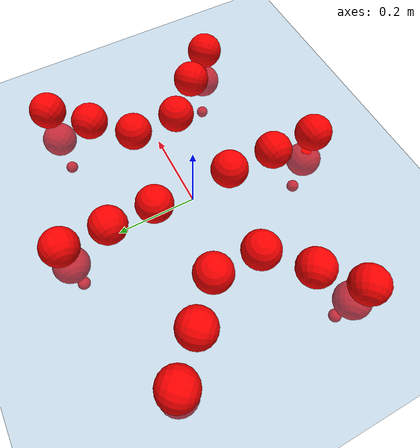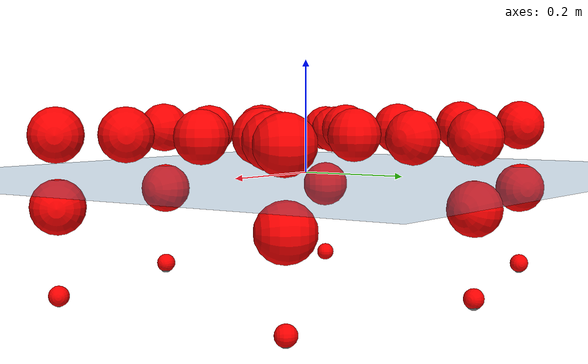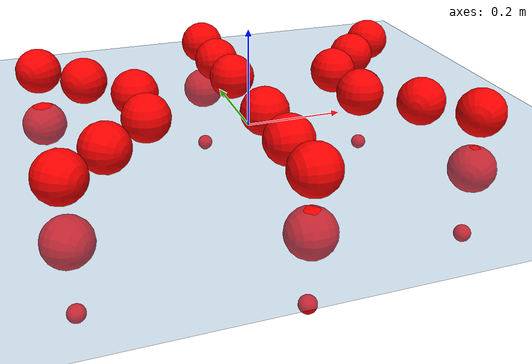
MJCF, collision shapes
<mujoco model="Golem">
  <compiler angle="radian" assetdir="assets" balanceinertia="true" inertiafromgeom="false"/>

  <option timestep="0.005" density="1.2" viscosity="2e-05"/>

  <size nkey="1"/>

  <visual>
    <quality shadowsize="8192"/>
    <map shadowclip="0.5"/>
  </visual>

  <default>
    <default class="/">
      <joint armature="0.01" damping="0.01" frictionloss="0.01"/>
      <geom contype="0" conaffinity="0" group="1" solref="-1000 -80"/>
      <site size="0.01 0.005 0.005" group="5"/>
      <general forcelimited="true" biastype="affine" gainprm="25" biasprm="0 -25 -0.5"/>
      <default class="visual">
        <geom type="mesh" group="2"/>
      </default>
      <default class="collision">
        <geom group="3"/>
      </default>
      <default class="foot">
        <geom size="0.01 0 0" condim="6" group="4" priority="1" solimp="0.015 1 0.01"/>
      </default>
      <default class="reward_collision_sphere">
        <geom group="5" rgba="1 0 0 1"/>
      </default>
    </default>
  </default>

  <asset>
    <texture type="skybox" colorspace="auto" name="//unnamed_texture_0" builtin="gradient" rgb1="0.95 0.95 0.95" rgb2="0.95 0.95 0.95" width="100" height="600"/>
    <texture type="2d" colorspace="auto" name="texplane" builtin="checker" rgb1="0.345 0.575 0.748" rgb2="0.345 0.575 0.748" markrgb="1 1 1" width="512" height="512"/>
    <material name="MatPlane" class="/" texture="texplane" texuniform="true" texrepeat="2 2" specular="0.9"/>
    <mesh name="body" class="/" file="body.stl" scale="0.001 0.001 0.001"/>
    <mesh name="coxa" class="/" file="coxa.stl" scale="0.001 0.001 0.001"/>
    <mesh name="femur" class="/" file="femur.stl" scale="0.001 0.001 0.001"/>
    <mesh name="tibia" class="/" file="tibia.stl" scale="0.001 0.001 0.001"/>
    <mesh name="tarsus" class="/" file="tarsus.stl" scale="0.001 0.001 0.001"/>
  </asset>

  <worldbody>
    <geom name="floor" class="/" size="100 100 0.125" type="plane" group="0" material="MatPlane"/>
    <light name="toplight_shadow" class="/" pos="0 0 5" dir="0.0990148 0.0990148 -0.990148" type="directional" ambient="0.04 0.04 0.04" diffuse="0.55 0.55 0.55" specular="0.12 0.12 0.12"/>
    <light name="toplight_fill" class="/" pos="0 0 5" dir="0.0990148 0.0990148 -0.990148" type="directional" castshadow="false" ambient="0.04 0.04 0.04" diffuse="0.3 0.3 0.3" specular="0.08 0.08 0.08"/>
    <body name="trunk" pos="-0.00201801 0.00166351 0.00200372" quat="1 -4.78428e-06 -5.88054e-06 3.3023e-06">
      <inertial pos="0.0029152 0.00168069 -0.00404785" quat="0.999995 -0.00219997 -0.00167712 -0.00138275" mass="6.17091" diaginertia="0.0489742 0.0158679 0.0129028"/>
      <joint name="//unnamed_joint_0" type="free"/>
      <geom name="//unnamed_geom_1" class="/" pos="0 0 0.0671873" quat="1 0 0 0" type="mesh" rgba="0.9 0.9 0.9 1" mesh="body"/>
      <site name="imu" class="/" pos="0.172331 -0.00460341 0.118304" size="0.0117043"/>
      <camera name="track" class="/" pos="0 -2.17278 0" quat="0.707107 0.707107 0 0" mode="trackcom"/>
      <camera name="ego_camera" class="/" pos="0.178763 0 0.10498" quat="-0.5 -0.5 0.5 0.5"/>
      <body name="coxa_RR" pos="-0.244062 -0.089174 0.0698148" quat="0.382684 -7.44396e-05 0.000117179 -0.923879">
        <inertial pos="0.000723973 0.00261391 -0.00245521" quat="0.999992 0.00348601 0.0012132 -0.00143512" mass="0.339788" diaginertia="0.0498871 0.0153858 0.0130315"/>
        <joint name="coxa_joint_RR" class="/" pos="0 0 0" axis="-0.00977272 0.00163301 -0.999951" stiffness="0.0127212" range="-3.13915 3.13097" armature="0.0119426" damping="0" frictionloss="0.0117649"/>
        <geom name="//unnamed_geom_2" class="/" type="mesh" rgba="0.2 0.2 0.2 1" mesh="coxa"/>
        <geom name="//unnamed_geom_3" class="reward_collision_sphere" size="0.0468172" pos="-0.041253 0 0"/>
        <body name="femur_RR" pos="0.0829657 -0.00166977 -0.00564095" quat="0.500202 -0.500068 0.500319 0.499411">
          <inertial pos="-0.00232028 -0.0026623 0.000752082" quat="0.99991 0.0108783 0.00609632 0.00490347" mass="0.317194" diaginertia="0.0486197 0.0154698 0.0120891"/>
          <joint name="femur_joint_RR" class="/" pos="0 0 0" axis="-0.0137028 -0.003352 -0.9999" stiffness="0.00864364" range="-3.12298 3.12048" armature="0.0102104" damping="0" frictionloss="0.01149"/>
          <geom name="//unnamed_geom_4" class="/" type="mesh" rgba="0.9 0.9 0.9 1" mesh="femur"/>
          <geom name="//unnamed_geom_5" class="reward_collision_sphere" size="0.0468172"/>
          <body name="tibia_RR" pos="0.000652062 -0.115624 -0.0026726" quat="-0.000838345 0.999999 -0.000493331 -0.000766932">
            <inertial pos="0.000836093 -0.00224182 0.000643085" quat="0.999994 -0.00254971 -0.000952463 0.00224359" mass="0.31486" diaginertia="0.0476529 0.0143443 0.0122709"/>
            <joint name="tibia_joint_RR" class="/" pos="0 0 0" axis="-0.000986679 -0.00375006 0.999992" stiffness="0.000998884" range="-3.09041 3.16896" armature="0.0105998" damping="0.00192532" frictionloss="0.0116062"/>
            <geom name="//unnamed_geom_6" class="/" type="mesh" rgba="0.2 0.2 0.2 1" mesh="tibia"/>
            <geom name="//unnamed_geom_7" class="reward_collision_sphere" size="0.0468172"/>
            <body name="tarsus_RR" pos="0.12121 0.0010053 -0.000789278" quat="1 9.77741e-05 -4.63713e-05 0.000244118">
              <inertial pos="0.0821238 0.000775502 0.00245025" quat="0.494775 0.510052 0.494277 0.500735" mass="0.316989" diaginertia="0.0501869 0.0154069 0.0125072"/>
              <joint name="tarsus_joint_RR" class="/" pos="0 0 0" axis="-5.53709e-06 -0.00191744 0.999998" stiffness="0.00361702" range="-3.12388 3.16484" armature="0.0101856" damping="0.0416685" frictionloss="0.0103625"/>
              <geom name="//unnamed_geom_8" class="/" type="mesh" rgba="0.9 0.9 0.9 1" mesh="tarsus"/>
              <geom name="foot_1" class="foot" size="0.0114309" pos="0.154011 0 0" quat="0 -0.707107 0 0.707107"/>
              <geom name="//unnamed_geom_10" class="reward_collision_sphere" size="0.0468172"/>
              <geom name="//unnamed_geom_11" class="reward_collision_sphere" size="0.0175565" pos="0.147823 0 0"/>
              <site name="foot_1" class="foot" pos="0.154011 0 0" quat="0 -0.707107 0 0.707107" size="0.0117043"/>
            </body>
          </body>
        </body>
      </body>
      <body name="coxa_RM" pos="0.000591548 -0.142978 0.0710876" quat="0.706623 0.00010075 0.000361404 -0.70759">
        <inertial pos="0.000669881 0.00029354 -0.00230846" quat="0.999928 0.00157716 -0.0108589 -0.00491863" mass="0.30974" diaginertia="0.0477466 0.015526 0.012884"/>
        <joint name="coxa_joint_RM" class="/" pos="0 0 0" axis="0.00466265 -0.00971309 -0.999942" range="-3.19265 3.17725" armature="0.0122814" damping="0.0117215" frictionloss="0.0137717"/>
        <geom name="//unnamed_geom_12" class="/" type="mesh" rgba="0.2 0.2 0.2 1" mesh="coxa"/>
        <geom name="//unnamed_geom_13" class="reward_collision_sphere" size="0.0468172" pos="-0.041253 0 0"/>
        <body name="femur_RM" pos="0.0839327 -0.000483307 -0.00147294" quat="0.500654 -0.499865 0.499558 0.499922">
          <inertial pos="0.0024066 -0.00266788 0.000194633" quat="0.99991 0.00584612 0.00420882 -0.011306" mass="0.311534" diaginertia="0.0474792 0.0146614 0.0121986"/>
          <joint name="femur_joint_RM" class="/" pos="0 0 0" axis="-0.0081311 -0.000550032 -0.999967" range="-3.12757 3.13881" armature="0.0103159" damping="0.015211" frictionloss="0.0115685"/>
          <geom name="//unnamed_geom_14" class="/" type="mesh" rgba="0.9 0.9 0.9 1" mesh="femur"/>
          <geom name="//unnamed_geom_15" class="reward_collision_sphere" size="0.0468172"/>
          <body name="tibia_RM" pos="-0.0023843 -0.117952 -0.00248524" quat="-0.000215791 1 -5.88696e-05 -3.39374e-05">
            <inertial pos="0.0010585 0.0024723 -0.000734792" quat="0.999986 -3.84718e-06 0.00264024 0.00465179" mass="0.313231" diaginertia="0.048072 0.014128 0.0120512"/>
            <joint name="tibia_joint_RM" class="/" pos="0 0 0" axis="-0.00135043 -0.00236799 0.999996" range="-3.11784 3.06961" armature="0.0116453" damping="0.0175898" frictionloss="0.0131239"/>
            <geom name="//unnamed_geom_16" class="/" type="mesh" rgba="0.2 0.2 0.2 1" mesh="tibia"/>
            <geom name="//unnamed_geom_17" class="reward_collision_sphere" size="0.0468172"/>
            <body name="tarsus_RM" pos="0.119036 -0.00108013 0.00137543" quat="1 -5.9094e-06 5.53837e-05 -0.000103301">
              <inertial pos="0.0855323 -0.000973883 0.000483717" quat="0.493855 0.494733 0.50717 0.504109" mass="0.310031" diaginertia="0.0494421 0.0147443 0.0126619"/>
              <joint name="tarsus_joint_RM" class="/" pos="0 0 0" axis="-0.000204064 7.76325e-05 1" range="-3.11207 3.08566" armature="0.0131607" damping="0" frictionloss="0.0122257"/>
              <geom name="//unnamed_geom_18" class="/" type="mesh" rgba="0.9 0.9 0.9 1" mesh="tarsus"/>
              <geom name="foot_2" class="foot" size="0.012841" pos="0.154011 0 0" quat="0 -0.707107 0 0.707107"/>
              <geom name="//unnamed_geom_20" class="reward_collision_sphere" size="0.0468172"/>
              <geom name="//unnamed_geom_21" class="reward_collision_sphere" size="0.0175565" pos="0.147823 0 0"/>
              <site name="foot_2" class="foot" pos="0.154011 0 0" quat="0 -0.707107 0 0.707107" size="0.0117043"/>
            </body>
          </body>
        </body>
      </body>
      <body name="coxa_RF" pos="0.245156 -0.0925727 0.0660614" quat="0.923647 0.000121636 -0.000116187 -0.383244">
        <inertial pos="-0.00247501 0.00197501 -0.000428153" quat="0.999997 0.000565079 0.00103548 0.00196207" mass="0.327515" diaginertia="0.0493372 0.0159675 0.0126038"/>
        <joint name="coxa_joint_RF" class="/" pos="0 0 0" axis="-0.000142351 0.00486763 -0.999988" range="-3.15058 3.18897" armature="0.011418" damping="0.0302742" frictionloss="0.0118203"/>
        <geom name="//unnamed_geom_22" class="/" type="mesh" rgba="0.2 0.2 0.2 1" mesh="coxa"/>
        <geom name="//unnamed_geom_23" class="reward_collision_sphere" size="0.0468172" pos="-0.041253 0 0"/>
        <body name="femur_RF" pos="0.0824647 -0.00144011 0.00444712" quat="0.501211 -0.499929 0.499461 0.499397">
          <inertial pos="0.00259856 -0.00132803 -0.000332215" quat="0.999921 -0.00377746 0.00417107 -0.0112146" mass="0.313129" diaginertia="0.0491256 0.0144118 0.0121521"/>
          <joint name="femur_joint_RF" class="/" pos="0 0 0" axis="-0.00162321 -0.000607926 -0.999998" range="-3.09374 3.19234" armature="0.012092" damping="0.0152895" frictionloss="0.0118188"/>
          <geom name="//unnamed_geom_24" class="/" type="mesh" rgba="0.9 0.9 0.9 1" mesh="femur"/>
          <geom name="//unnamed_geom_25" class="reward_collision_sphere" size="0.0468172"/>
          <body name="tibia_RF" pos="0.000106367 -0.114003 -0.0033294" quat="0.000159564 1 -7.04392e-05 -0.000196219">
            <inertial pos="0.00281055 0.000173665 -0.00241031" quat="1 0.000109981 -2.07773e-05 -8.59972e-05" mass="0.323845" diaginertia="0.0495417 0.0158499 0.0131308"/>
            <joint name="tibia_joint_RF" class="/" pos="0 0 0" axis="0.0105326 0.00598271 0.999927" stiffness="0.00611446" range="-3.19098 3.18685" armature="0.0102818" damping="0.0120234" frictionloss="0.0118363"/>
            <geom name="//unnamed_geom_26" class="/" type="mesh" rgba="0.2 0.2 0.2 1" mesh="tibia"/>
            <geom name="//unnamed_geom_27" class="reward_collision_sphere" size="0.0468172"/>
            <body name="tarsus_RF" pos="0.118826 -0.00200555 -0.000144889" quat="1 0.000726586 0.000502686 4.03492e-05">
              <inertial pos="0.0838849 0.00230186 -0.000628191" quat="0.501474 0.499705 0.498573 0.500244" mass="0.3193" diaginertia="0.0506491 0.0147816 0.0130883"/>
              <joint name="tarsus_joint_RF" class="/" pos="0 0 0" axis="0.0075859 0.00238015 0.999968" range="-3.19261 3.08902" armature="0.0125779" damping="0.00602087" frictionloss="0.0104384"/>
              <geom name="//unnamed_geom_28" class="/" type="mesh" rgba="0.9 0.9 0.9 1" mesh="tarsus"/>
              <geom name="foot_3" class="foot" size="0.0117923" pos="0.154011 0 0" quat="0 -0.707107 0 0.707107"/>
              <geom name="//unnamed_geom_30" class="reward_collision_sphere" size="0.0468172"/>
              <geom name="//unnamed_geom_31" class="reward_collision_sphere" size="0.0175565" pos="0.147823 0 0"/>
              <site name="foot_3" class="foot" pos="0.154011 0 0" quat="0 -0.707107 0 0.707107" size="0.0117043"/>
            </body>
          </body>
        </body>
      </body>
      <body name="coxa_LR" pos="-0.242288 0.0889075 0.0723612" quat="0.382519 0.000127397 0.00010204 0.923948">
        <inertial pos="0.00164033 0.00199429 0.00330141" quat="0.999927 0.0104727 -0.00351167 -0.00496673" mass="0.319238" diaginertia="0.0491691 0.014614 0.0132895"/>
        <joint name="coxa_joint_LR" class="/" pos="0 0 0" axis="-0.00133676 0.0081785 -0.999966" stiffness="0.00540922" range="-3.19137 3.09817" armature="0.0106988" damping="0" frictionloss="0.0117286"/>
        <geom name="//unnamed_geom_32" class="/" type="mesh" rgba="0.2 0.2 0.2 1" mesh="coxa"/>
        <geom name="//unnamed_geom_33" class="reward_collision_sphere" size="0.0468172" pos="-0.041253 0 0"/>
        <body name="femur_LR" pos="0.0823111 0.000583074 0.0040398" quat="0.500158 -0.499911 0.500041 0.49989">
          <inertial pos="-0.00250434 0.000537219 -0.000721356" quat="0.999954 0.00160479 -0.00323644 -0.00883541" mass="0.320889" diaginertia="0.0481297 0.0149549 0.0125592"/>
          <joint name="femur_joint_LR" class="/" pos="0 0 0" axis="0.00634503 0.00455059 0.99997" stiffness="0.00629257" range="-3.0859 3.13521" armature="0.012977" damping="0.00125378" frictionloss="0.0133606"/>
          <geom name="//unnamed_geom_34" class="/" type="mesh" rgba="0.9 0.9 0.9 1" mesh="femur"/>
          <geom name="//unnamed_geom_35" class="reward_collision_sphere" size="0.0468172"/>
          <body name="tibia_LR" pos="-0.000569769 -0.119248 -0.00102492" quat="0.000476732 1 -0.000470456 9.36915e-05">
            <inertial pos="-0.000113055 2.42872e-05 -0.000262186" quat="0.999959 0.00806694 -0.00110096 -0.00405577" mass="0.340603" diaginertia="0.0504377 0.015035 0.0129111"/>
            <joint name="tibia_joint_LR" class="/" pos="0 0 0" axis="0.00815292 -0.0026878 -0.999963" stiffness="0.0076559" range="-3.18156 3.1386" armature="0.0114577" damping="0" frictionloss="0.011913"/>
            <geom name="//unnamed_geom_36" class="/" type="mesh" rgba="0.2 0.2 0.2 1" mesh="tibia"/>
            <geom name="//unnamed_geom_37" class="reward_collision_sphere" size="0.0468172"/>
            <body name="tarsus_LR" pos="0.121766 0.00150254 0.000233028" quat="1 0.000373375 0.000600235 0.000552814">
              <inertial pos="0.0797876 0.000305404 0.00263844" quat="0.502032 0.50132 0.498744 0.497891" mass="0.32593" diaginertia="0.0504163 0.0155179 0.013121"/>
              <joint name="tarsus_joint_LR" class="/" pos="0 0 0" axis="-0.00569869 0.00200236 -0.999982" range="-3.13051 3.14838" armature="0.0121493" damping="0.000922776" frictionloss="0.0132749"/>
              <geom name="//unnamed_geom_38" class="/" type="mesh" rgba="0.9 0.9 0.9 1" mesh="tarsus"/>
              <geom name="foot_4" class="foot" size="0.0124936" pos="0.154011 0 0" quat="0.707107 0 -0.707107 0"/>
              <geom name="//unnamed_geom_40" class="reward_collision_sphere" size="0.0468172"/>
              <geom name="//unnamed_geom_41" class="reward_collision_sphere" size="0.0175565" pos="0.147823 0 0"/>
              <site name="foot_4" class="foot" pos="0.154011 0 0" quat="0.707107 0 -0.707107 0" size="0.0117043"/>
            </body>
          </body>
        </body>
      </body>
      <body name="coxa_LM" pos="-8.59068e-05 0.141646 0.0666307" quat="0.706738 -0.000223487 -0.00126109 0.707474">
        <inertial pos="0.00301705 -0.00274504 0.000127473" quat="0.999979 0.00394176 -0.00064066 -0.00508028" mass="0.309173" diaginertia="0.046354 0.0148674 0.0122572"/>
        <joint name="coxa_joint_LM" class="/" pos="0 0 0" axis="0.00820422 0.00302037 -0.999962" range="-3.14712 3.14143" armature="0.0131036" damping="0.0164247" frictionloss="0.0117128"/>
        <geom name="//unnamed_geom_42" class="/" type="mesh" rgba="0.2 0.2 0.2 1" mesh="coxa"/>
        <geom name="//unnamed_geom_43" class="reward_collision_sphere" size="0.0468172" pos="-0.041253 0 0"/>
        <body name="femur_LM" pos="0.0763764 -0.000361813 -0.00243767" quat="0.499958 -0.500226 0.499811 0.500005">
          <inertial pos="0.00234613 0.000391067 -0.00300175" quat="0.999952 -0.00577558 -0.00102543 -0.00780026" mass="0.330346" diaginertia="0.052093 0.0163008 0.0136023"/>
          <joint name="femur_joint_LM" class="/" pos="0 0 0" axis="0.00483276 -0.00545933 0.999973" stiffness="0.00927298" range="-3.13237 3.14084" armature="0.012657" damping="0.010555" frictionloss="0.011452"/>
          <geom name="//unnamed_geom_44" class="/" type="mesh" rgba="0.9 0.9 0.9 1" mesh="femur"/>
          <geom name="//unnamed_geom_45" class="reward_collision_sphere" size="0.0468172"/>
          <body name="tibia_LM" pos="-0.00267973 -0.116985 0.000944137" quat="0.000526414 0.999999 0.001148 0.000796535">
            <inertial pos="0.00189223 0.00264846 0.00260931" quat="0.999982 0.000332386 -0.000622616 0.00591293" mass="0.31038" diaginertia="0.0508848 0.0149376 0.0131967"/>
            <joint name="tibia_joint_LM" class="/" pos="0 0 0" axis="0.0066718 0.00103667 -0.999977" range="-3.15624 3.19083" armature="0.011039" damping="0.025423" frictionloss="0.0105194"/>
            <geom name="//unnamed_geom_46" class="/" type="mesh" rgba="0.2 0.2 0.2 1" mesh="tibia"/>
            <geom name="//unnamed_geom_47" class="reward_collision_sphere" size="0.0468172"/>
            <body name="tarsus_LM" pos="0.116336 0.000197446 0.00129416" quat="0.999998 0.00132567 -0.000997635 0.000535596">
              <inertial pos="0.081444 0.000923204 -0.00195367" quat="0.499626 0.499897 0.499651 0.500824" mass="0.336657" diaginertia="0.0492991 0.0152279 0.0133021"/>
              <joint name="tarsus_joint_LM" class="/" pos="0 0 0" axis="1.11922e-05 2.05687e-05 -1" stiffness="0.0163611" range="-3.19826 3.18652" armature="0.0110498" damping="0.0249153" frictionloss="0.01322"/>
              <geom name="//unnamed_geom_48" class="/" type="mesh" rgba="0.9 0.9 0.9 1" mesh="tarsus"/>
              <geom name="foot_5" class="foot" size="0.0129982" pos="0.154011 0 0" quat="0.707107 0 -0.707107 0"/>
              <geom name="//unnamed_geom_50" class="reward_collision_sphere" size="0.0468172"/>
              <geom name="//unnamed_geom_51" class="reward_collision_sphere" size="0.0175565" pos="0.147823 0 0"/>
              <site name="foot_5" class="foot" pos="0.154011 0 0" quat="0.707107 0 -0.707107 0" size="0.0117043"/>
            </body>
          </body>
        </body>
      </body>
      <body name="coxa_LF" pos="0.241928 0.0885905 0.0694195" quat="0.923828 -4.71609e-05 -0.000239053 0.382807">
        <inertial pos="0.000178226 0.000503685 -0.00255261" quat="0.999989 -0.000678448 -0.000984736 0.00449785" mass="0.322447" diaginertia="0.0505823 0.0153905 0.0128615"/>
        <joint name="coxa_joint_LF" class="/" pos="0 0 0" axis="0.00358064 -0.00127429 -0.999993" stiffness="0.0300997" range="-3.18954 3.08097" armature="0.011114" damping="0.0269589" frictionloss="0.011065"/>
        <geom name="//unnamed_geom_52" class="/" type="mesh" rgba="0.2 0.2 0.2 1" mesh="coxa"/>
        <geom name="//unnamed_geom_53" class="reward_collision_sphere" size="0.0468172" pos="-0.041253 0 0"/>
        <body name="femur_LF" pos="0.0805777 0.0018484 -0.00215661" quat="0.499647 -0.500158 0.499565 0.500629">
          <inertial pos="-0.00266648 0.000330111 0.000145955" quat="0.999916 -0.00512202 -0.0117823 0.00166605" mass="0.302163" diaginertia="0.0477925 0.0148016 0.0121231"/>
          <joint name="femur_joint_LF" class="/" pos="0 0 0" axis="-0.00149132 0.00149233 0.999998" stiffness="0.00231756" range="-3.11099 3.18274" armature="0.0112138" damping="0" frictionloss="0.0102216"/>
          <geom name="//unnamed_geom_54" class="/" type="mesh" rgba="0.9 0.9 0.9 1" mesh="femur"/>
          <geom name="//unnamed_geom_55" class="reward_collision_sphere" size="0.0468172"/>
          <body name="tibia_LF" pos="0.000740773 -0.119468 0.00116708" quat="-4.5172e-05 1 0.000313327 -9.04421e-05">
            <inertial pos="1.6858e-05 0.000538435 0.00248531" quat="0.999913 -0.00330196 -0.00359883 0.0122645" mass="0.309472" diaginertia="0.0472602 0.0151329 0.0127029"/>
            <joint name="tibia_joint_LF" class="/" pos="0 0 0" axis="0.00278067 -0.00539873 -0.999982" range="-3.14499 3.14808" armature="0.0107709" damping="0.0042197" frictionloss="0.0129699"/>
            <geom name="//unnamed_geom_56" class="/" type="mesh" rgba="0.2 0.2 0.2 1" mesh="tibia"/>
            <geom name="//unnamed_geom_57" class="reward_collision_sphere" size="0.0468172"/>
            <body name="tarsus_LF" pos="0.124723 -0.000261789 -0.00101874" quat="1 -0.000188294 0.000954915 -7.74549e-05">
              <inertial pos="0.0843709 0.000451535 -0.00226539" quat="0.499164 0.497679 0.501891 0.501255" mass="0.33953" diaginertia="0.0510146 0.0156289 0.0135336"/>
              <joint name="tarsus_joint_LF" class="/" pos="0 0 0" axis="-0.010919 0.00359681 -0.999934" stiffness="0.0188889" range="-3.14455 3.18348" armature="0.0117755" damping="0.0258435" frictionloss="0.0115092"/>
              <geom name="//unnamed_geom_58" class="/" type="mesh" rgba="0.9 0.9 0.9 1" mesh="tarsus"/>
              <geom name="foot_6" class="foot" size="0.0123061" pos="0.154011 0 0" quat="0.707107 0 -0.707107 0"/>
              <geom name="//unnamed_geom_60" class="reward_collision_sphere" size="0.0468172"/>
              <geom name="//unnamed_geom_61" class="reward_collision_sphere" size="0.0175565" pos="0.147823 0 0"/>
              <site name="foot_6" class="foot" pos="0.154011 0 0" quat="0.707107 0 -0.707107 0" size="0.0117043"/>
            </body>
          </body>
        </body>
      </body>
    </body>
  </worldbody>

  <contact>
    <pair class="/" geom1="floor" geom2="foot_1" name="//unnamed_contact_0"/>
    <pair class="/" geom1="floor" geom2="foot_2" name="//unnamed_contact_1"/>
    <pair class="/" geom1="floor" geom2="foot_3" name="//unnamed_contact_2"/>
    <pair class="/" geom1="floor" geom2="foot_4" name="//unnamed_contact_3"/>
    <pair class="/" geom1="floor" geom2="foot_5" name="//unnamed_contact_4"/>
    <pair class="/" geom1="floor" geom2="foot_6" name="//unnamed_contact_5"/>
  </contact>

  <actuator>
    <general name="coxa_joint_RR" class="/" joint="coxa_joint_RR" forcerange="-8.84987 8.84987" gainprm="28.076" biasprm="0 -28.076 -0.568784"/>
    <general name="femur_joint_RR" class="/" joint="femur_joint_RR" forcerange="-8.39865 8.39865" gainprm="28.076" biasprm="0 -28.076 -0.568784"/>
    <general name="tibia_joint_RR" class="/" joint="tibia_joint_RR" forcerange="-8.30757 8.30757" gainprm="28.076" biasprm="0 -28.076 -0.568784"/>
    <general name="tarsus_joint_RR" class="/" joint="tarsus_joint_RR" forcerange="-8.65743 8.65743" gainprm="28.076" biasprm="0 -28.076 -0.568784"/>
    <general name="coxa_joint_RM" class="/" joint="coxa_joint_RM" forcerange="-9.31726 9.31726" gainprm="28.076" biasprm="0 -28.076 -0.568784"/>
    <general name="femur_joint_RM" class="/" joint="femur_joint_RM" forcerange="-7.83562 7.83562" gainprm="28.076" biasprm="0 -28.076 -0.568784"/>
    <general name="tibia_joint_RM" class="/" joint="tibia_joint_RM" forcerange="-8.06719 8.06719" gainprm="28.076" biasprm="0 -28.076 -0.568784"/>
    <general name="tarsus_joint_RM" class="/" joint="tarsus_joint_RM" forcerange="-8.78914 8.78914" gainprm="28.076" biasprm="0 -28.076 -0.568784"/>
    <general name="coxa_joint_RF" class="/" joint="coxa_joint_RF" forcerange="-9.09428 9.09428" gainprm="28.076" biasprm="0 -28.076 -0.568784"/>
    <general name="femur_joint_RF" class="/" joint="femur_joint_RF" forcerange="-7.92807 7.92807" gainprm="28.076" biasprm="0 -28.076 -0.568784"/>
    <general name="tibia_joint_RF" class="/" joint="tibia_joint_RF" forcerange="-9.46617 9.46617" gainprm="28.076" biasprm="0 -28.076 -0.568784"/>
    <general name="tarsus_joint_RF" class="/" joint="tarsus_joint_RF" forcerange="-9.21808 9.21808" gainprm="28.076" biasprm="0 -28.076 -0.568784"/>
    <general name="coxa_joint_LR" class="/" joint="coxa_joint_LR" forcerange="-8.46087 8.46087" gainprm="28.076" biasprm="0 -28.076 -0.568784"/>
    <general name="femur_joint_LR" class="/" joint="femur_joint_LR" forcerange="-8.44049 8.44049" gainprm="28.076" biasprm="0 -28.076 -0.568784"/>
    <general name="tibia_joint_LR" class="/" joint="tibia_joint_LR" forcerange="-8.65274 8.65274" gainprm="28.076" biasprm="0 -28.076 -0.568784"/>
    <general name="tarsus_joint_LR" class="/" joint="tarsus_joint_LR" forcerange="-9.39935 9.39935" gainprm="28.076" biasprm="0 -28.076 -0.568784"/>
    <general name="coxa_joint_LM" class="/" joint="coxa_joint_LM" forcerange="-8.45099 8.45099" gainprm="28.076" biasprm="0 -28.076 -0.568784"/>
    <general name="femur_joint_LM" class="/" joint="femur_joint_LM" forcerange="-8.46133 8.46133" gainprm="28.076" biasprm="0 -28.076 -0.568784"/>
    <general name="tibia_joint_LM" class="/" joint="tibia_joint_LM" forcerange="-8.34667 8.34667" gainprm="28.076" biasprm="0 -28.076 -0.568784"/>
    <general name="tarsus_joint_LM" class="/" joint="tarsus_joint_LM" forcerange="-8.46138 8.46138" gainprm="28.076" biasprm="0 -28.076 -0.568784"/>
    <general name="coxa_joint_LF" class="/" joint="coxa_joint_LF" forcerange="-9.5545 9.5545" gainprm="28.076" biasprm="0 -28.076 -0.568784"/>
    <general name="femur_joint_LF" class="/" joint="femur_joint_LF" forcerange="-8.26749 8.26749" gainprm="28.076" biasprm="0 -28.076 -0.568784"/>
    <general name="tibia_joint_LF" class="/" joint="tibia_joint_LF" forcerange="-9.30634 9.30634" gainprm="28.076" biasprm="0 -28.076 -0.568784"/>
    <general name="tarsus_joint_LF" class="/" joint="tarsus_joint_LF" forcerange="-7.93685 7.93685" gainprm="28.076" biasprm="0 -28.076 -0.568784"/>
  </actuator>

  <sensor>
    <gyro site="imu" name="imu_angular_velocity"/>
    <velocimeter site="imu" name="imu_linear_velocity"/>
    <framelinvel objtype="site" objname="foot_1" name="foot_1_global_linear_velocity"/>
    <framelinvel objtype="site" objname="foot_2" name="foot_2_global_linear_velocity"/>
    <framelinvel objtype="site" objname="foot_3" name="foot_3_global_linear_velocity"/>
    <framelinvel objtype="site" objname="foot_4" name="foot_4_global_linear_velocity"/>
    <framelinvel objtype="site" objname="foot_5" name="foot_5_global_linear_velocity"/>
    <framelinvel objtype="site" objname="foot_6" name="foot_6_global_linear_velocity"/>
  </sensor>

  <keyframe>
    <key name="home" qpos="0 0 0.1457 1 0 0 0 0 0 0 0 0 0 0 0 0 0 0 0 0 0 0 0 0 0 0 0 0 0 0 0"/>
  </keyframe>
</mujoco>
